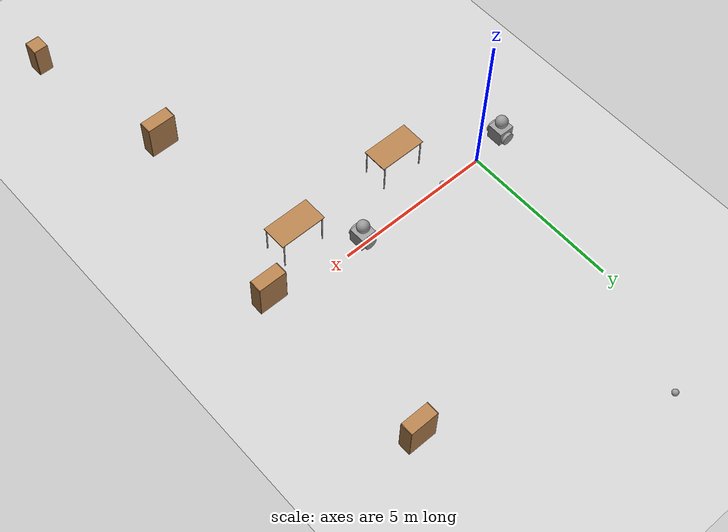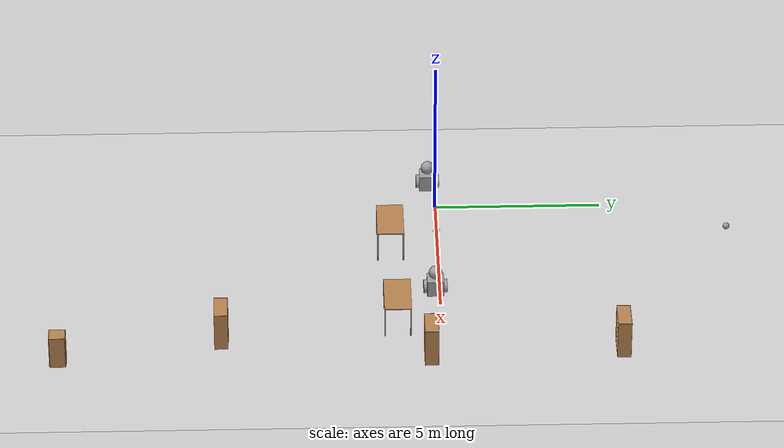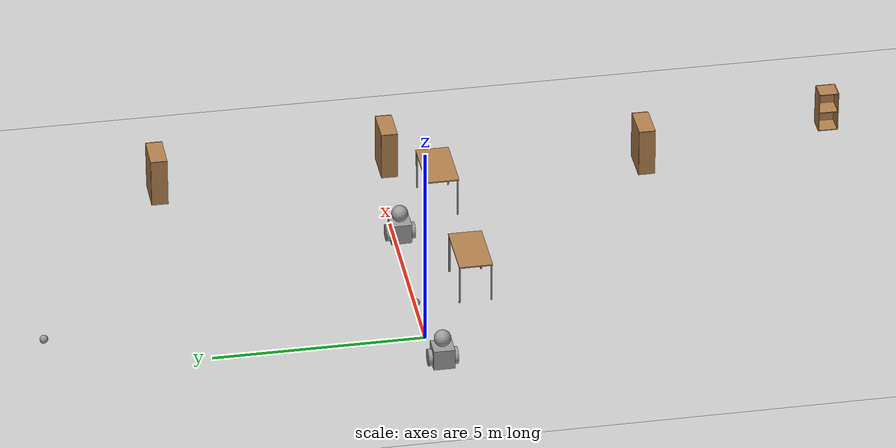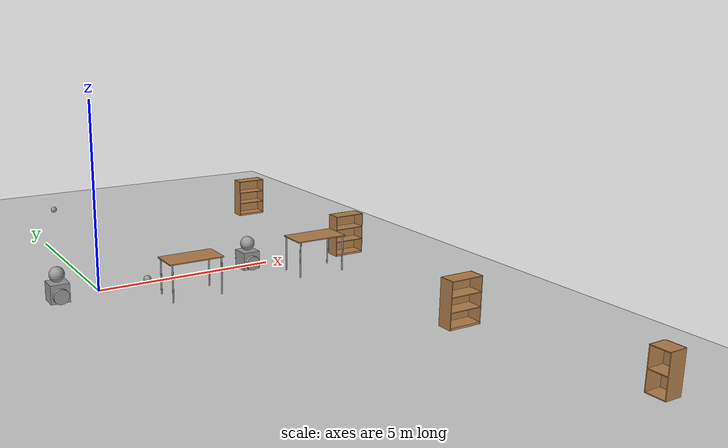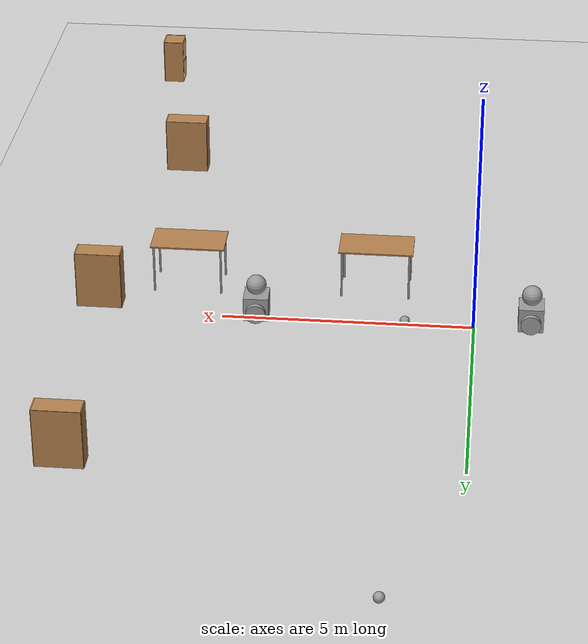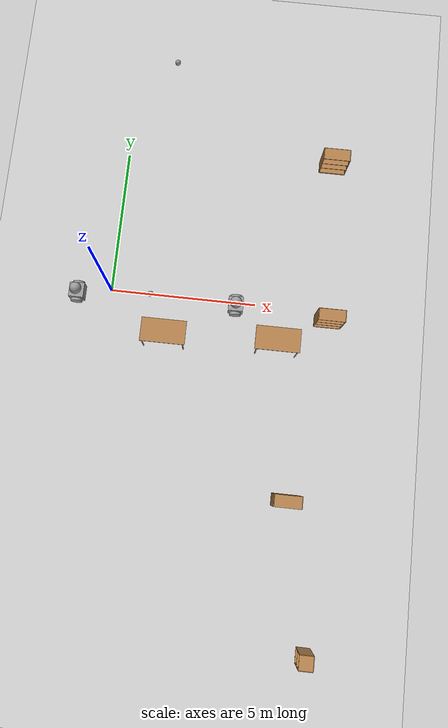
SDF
<sdf version="1.6">
 <world name="default">
  <model name="ground_plane">
   <static>1</static>
   <link name="link">
    <collision name="collision">
     <geometry><plane><normal>0 0 1</normal><size>100 100</size></plane></geometry>
     <surface>
      <contact><collide_bitmask>65535</collide_bitmask></contact>
      <friction><ode><mu>100</mu><mu2>50</mu2></ode></friction>
     </surface>
    </collision>
    <visual name="visual">
     <cast_shadows>0</cast_shadows>
     <geometry><plane><normal>0 0 1</normal><size>100 100</size></plane></geometry>
     <material>
      <script><uri>file://media/materials/scripts/gazebo.material</uri><name>Gazebo/Grey</name></script>
     </material>
    </visual>
   </link>
  </model>
  <model name="HumanoidRobot">
   <link name="link">
    <pose>0 -0 0.25 0 -0 0</pose>
    <inertial>
     <mass>1</mass>
     <inertia>
      <ixx>0.166667</ixx>
      <ixy>0</ixy>
      <ixz>0</ixz>
      <iyy>0.166667</iyy>
      <iyz>0</iyz>
      <izz>0.166667</izz>
     </inertia>
    </inertial>
    <visual name="visual">
     <geometry><box><size>0.5 0.5 0.5</size></box></geometry>
     <material>
      <script><name>Gazebo/Grey</name><uri>file://media/materials/scripts/gazebo.material</uri></script>
      <shader type="pixel"><normal_map>__default__</normal_map></shader>
      <ambient>0.3 0.3 0.3 1</ambient>
      <diffuse>0.7 0.7 0.7 1</diffuse>
      <specular>0.01 0.01 0.01 1</specular>
      <emissive>0 0 0 1</emissive>
     </material>
    </visual>
    <collision name="collision">
     <geometry><box><size>0.5 0.5 0.5</size></box></geometry>
     <surface>
      <friction>
       <ode><mu>1</mu><mu2>1</mu2><fdir1>0 0 0</fdir1><slip1>0</slip1><slip2>0</slip2></ode>
       <torsional>
        <coefficient>1</coefficient>
        <patch_radius>0</patch_radius>
        <surface_radius>0</surface_radius>
        <use_patch_radius>1</use_patch_radius>
        <ode><slip>0</slip></ode>
       </torsional>
      </friction>
      <bounce><restitution_coefficient>0</restitution_coefficient><threshold>1e+06</threshold></bounce>
      <contact>
       <collide_without_contact>0</collide_without_contact>
       <collide_without_contact_bitmask>1</collide_without_contact_bitmask>
       <collide_bitmask>1</collide_bitmask>
       <ode>
        <soft_cfm>0</soft_cfm>
        <soft_erp>0.2</soft_erp>
        <kp>1e+13</kp>
        <kd>1</kd>
        <max_vel>0.01</max_vel>
        <min_depth>0</min_depth>
       </ode>
       <bullet>
        <split_impulse>1</split_impulse>
        <split_impulse_penetration_threshold>-0.01</split_impulse_penetration_threshold>
        <soft_cfm>0</soft_cfm>
        <soft_erp>0.2</soft_erp>
        <kp>1e+13</kp>
        <kd>1</kd>
       </bullet>
      </contact>
     </surface>
    </collision>
   </link>
   <link name="link_0">
    <pose>0 -0 0.7 0 -0 0</pose>
    <inertial>
     <mass>1</mass>
     <inertia><ixx>0.1</ixx><ixy>0</ixy><ixz>0</ixz><iyy>0.1</iyy><iyz>0</iyz><izz>0.1</izz></inertia>
    </inertial>
    <visual name="visual">
     <geometry><sphere><radius>0.2</radius></sphere></geometry>
     <material>
      <lighting>1</lighting>
      <script><uri>file://media/materials/scripts/gazebo.material</uri><name>Gazebo/Grey</name></script>
      <shader type="pixel"><normal_map>__default__</normal_map></shader>
      <ambient>0.3 0.3 0.3 1</ambient>
      <diffuse>0.7 0.7 0.7 1</diffuse>
      <specular>0.01 0.01 0.01 1</specular>
      <emissive>0 0 0 1</emissive>
     </material>
    </visual>
    <collision name="collision">
     <geometry><sphere><radius>0.2</radius></sphere></geometry>
     <surface>
      <friction>
       <ode><mu>1</mu><mu2>1</mu2><fdir1>0 0 0</fdir1><slip1>0</slip1><slip2>0</slip2></ode>
       <torsional>
        <coefficient>1</coefficient>
        <patch_radius>0</patch_radius>
        <surface_radius>0</surface_radius>
        <use_patch_radius>1</use_patch_radius>
        <ode><slip>0</slip></ode>
       </torsional>
      </friction>
      <bounce><restitution_coefficient>0</restitution_coefficient><threshold>1e+06</threshold></bounce>
      <contact>
       <collide_without_contact>0</collide_without_contact>
       <collide_without_contact_bitmask>1</collide_without_contact_bitmask>
       <collide_bitmask>1</collide_bitmask>
       <ode>
        <soft_cfm>0</soft_cfm>
        <soft_erp>0.2</soft_erp>
        <kp>1e+13</kp>
        <kd>1</kd>
        <max_vel>0.01</max_vel>
        <min_depth>0</min_depth>
       </ode>
       <bullet>
        <split_impulse>1</split_impulse>
        <split_impulse_penetration_threshold>-0.01</split_impulse_penetration_threshold>
        <soft_cfm>0</soft_cfm>
        <soft_erp>0.2</soft_erp>
        <kp>1e+13</kp>
        <kd>1</kd>
       </bullet>
      </contact>
     </surface>
    </collision>
   </link>
   <link name="link_1">
    <pose>0 -0.300019 0.2 1.5707 -0 0</pose>
    <inertial>
     <mass>1</mass>
     <inertia><ixx>0.145833</ixx><ixy>0</ixy><ixz>0</ixz><iyy>0.145833</iyy><iyz>0</iyz><izz>0.125</izz></inertia>
    </inertial>
    <visual name="visual">
     <geometry><cylinder><radius>0.2</radius><length>0.1</length></cylinder></geometry>
     <material>
      <lighting>1</lighting>
      <script><uri>file://media/materials/scripts/gazebo.material</uri><name>Gazebo/Grey</name></script>
      <shader type="pixel"><normal_map>__default__</normal_map></shader>
      <ambient>0.3 0.3 0.3 1</ambient>
      <diffuse>0.7 0.7 0.7 1</diffuse>
      <specular>0.01 0.01 0.01 1</specular>
      <emissive>0 0 0 1</emissive>
     </material>
    </visual>
    <collision name="collision">
     <geometry><cylinder><radius>0.2</radius><length>0.1</length></cylinder></geometry>
     <surface>
      <friction>
       <ode><mu>1</mu><mu2>1</mu2><fdir1>0 0 0</fdir1><slip1>0</slip1><slip2>0</slip2></ode>
       <torsional>
        <coefficient>1</coefficient>
        <patch_radius>0</patch_radius>
        <surface_radius>0</surface_radius>
        <use_patch_radius>1</use_patch_radius>
        <ode><slip>0</slip></ode>
       </torsional>
      </friction>
      <bounce><restitution_coefficient>0</restitution_coefficient><threshold>1e+06</threshold></bounce>
      <contact>
       <collide_without_contact>0</collide_without_contact>
       <collide_without_contact_bitmask>1</collide_without_contact_bitmask>
       <collide_bitmask>1</collide_bitmask>
       <ode>
        <soft_cfm>0</soft_cfm>
        <soft_erp>0.2</soft_erp>
        <kp>1e+13</kp>
        <kd>1</kd>
        <max_vel>0.01</max_vel>
        <min_depth>0</min_depth>
       </ode>
       <bullet>
        <split_impulse>1</split_impulse>
        <split_impulse_penetration_threshold>-0.01</split_impulse_penetration_threshold>
        <soft_cfm>0</soft_cfm>
        <soft_erp>0.2</soft_erp>
        <kp>1e+13</kp>
        <kd>1</kd>
       </bullet>
      </contact>
     </surface>
    </collision>
   </link>
   <link name="link_1_clone">
    <pose>0 0.300019 0.2 1.5707 -0 0</pose>
    <inertial>
     <mass>1</mass>
     <inertia><ixx>0.145833</ixx><ixy>0</ixy><ixz>0</ixz><iyy>0.145833</iyy><iyz>0</iyz><izz>0.125</izz></inertia>
    </inertial>
    <visual name="visual">
     <geometry><cylinder><radius>0.2</radius><length>0.1</length></cylinder></geometry>
     <material>
      <lighting>1</lighting>
      <script><uri>file://media/materials/scripts/gazebo.material</uri><name>Gazebo/Grey</name></script>
      <shader type="pixel"><normal_map>__default__</normal_map></shader>
      <ambient>0.3 0.3 0.3 1</ambient>
      <diffuse>0.7 0.7 0.7 1</diffuse>
      <specular>0.01 0.01 0.01 1</specular>
      <emissive>0 0 0 1</emissive>
     </material>
    </visual>
    <collision name="collision">
     <geometry><cylinder><radius>0.2</radius><length>0.1</length></cylinder></geometry>
     <surface>
      <friction>
       <ode><mu>1</mu><mu2>1</mu2><fdir1>0 0 0</fdir1><slip1>0</slip1><slip2>0</slip2></ode>
       <torsional>
        <coefficient>1</coefficient>
        <patch_radius>0</patch_radius>
        <surface_radius>0</surface_radius>
        <use_patch_radius>1</use_patch_radius>
        <ode><slip>0</slip></ode>
       </torsional>
      </friction>
      <bounce><restitution_coefficient>0</restitution_coefficient><threshold>1e+06</threshold></bounce>
      <contact>
       <collide_without_contact>0</collide_without_contact>
       <collide_without_contact_bitmask>1</collide_without_contact_bitmask>
       <collide_bitmask>1</collide_bitmask>
       <ode>
        <soft_cfm>0</soft_cfm>
        <soft_erp>0.2</soft_erp>
        <kp>1e+13</kp>
        <kd>1</kd>
        <max_vel>0.01</max_vel>
        <min_depth>0</min_depth>
       </ode>
       <bullet>
        <split_impulse>1</split_impulse>
        <split_impulse_penetration_threshold>-0.01</split_impulse_penetration_threshold>
        <soft_cfm>0</soft_cfm>
        <soft_erp>0.2</soft_erp>
        <kp>1e+13</kp>
        <kd>1</kd>
       </bullet>
      </contact>
     </surface>
    </collision>
   </link>
   <joint name="link_0_JOINT_2" type="fixed">
    <parent>link_0</parent>
    <child>link</child>
    <physics>
     <ode><limit><cfm>0</cfm><erp>0.2</erp></limit><suspension><cfm>0</cfm><erp>0.2</erp></suspension></ode>
    </physics>
   </joint>
   <joint name="link_JOINT_0" type="revolute">
    <parent>link</parent>
    <child>link_1</child>
    <axis>
     <xyz>0 0 1</xyz>
     <use_parent_model_frame>0</use_parent_model_frame>
     <limit>
      <lower>-1.79769e+308</lower>
      <upper>1.79769e+308</upper>
      <effort>-1</effort>
      <velocity>-1</velocity>
     </limit>
     <dynamics>
      <spring_reference>0</spring_reference>
      <spring_stiffness>0</spring_stiffness>
      <damping>0</damping>
     </dynamics>
    </axis>
    <physics>
     <ode><limit><cfm>0</cfm><erp>0.2</erp></limit><suspension><cfm>0</cfm><erp>0.2</erp></suspension></ode>
    </physics>
   </joint>
   <joint name="link_JOINT_1" type="revolute">
    <parent>link</parent>
    <child>link_1_clone</child>
    <axis>
     <xyz>0 0 1</xyz>
     <use_parent_model_frame>0</use_parent_model_frame>
     <limit>
      <lower>-1.79769e+308</lower>
      <upper>1.79769e+308</upper>
      <effort>-1</effort>
      <velocity>-1</velocity>
     </limit>
     <dynamics>
      <spring_reference>0</spring_reference>
      <spring_stiffness>0</spring_stiffness>
      <damping>0</damping>
     </dynamics>
    </axis>
    <physics>
     <ode><limit><cfm>0</cfm><erp>0.2</erp></limit><suspension><cfm>0</cfm><erp>0.2</erp></suspension></ode>
    </physics>
   </joint>
   <static>0</static>
   <pose>-1.12711 -0.202007 -2e-06 -3e-06 -2e-06 -0.003463</pose>
  </model>
  <model name="cabinet">
   <static>1</static>
   <link name="cabinet_bottom_plate">
    <inertial>
     <pose>0 0 -1 0 -0 0</pose>
     <inertia><ixx>2.05</ixx><ixy>0</ixy><ixz>0</ixz><iyy>2.05</iyy><iyz>0</iyz><izz>2.05</izz></inertia>
     <mass>25</mass>
    </inertial>
    <collision name="cabinet_bottom_plate_geom">
     <pose>0 0 0.01 0 -0 0</pose>
     <geometry><box><size>0.45 0.45 0.02</size></box></geometry>
    </collision>
    <visual name="cabinet_bottom_plate_geom_visual">
     <pose>0 0 0.01 0 -0 0</pose>
     <geometry><box><size>0.45 0.45 0.02</size></box></geometry>
     <material>
      <script><uri>file://media/materials/scripts/gazebo.material</uri><name>Gazebo/Wood</name></script>
     </material>
    </visual>
    <collision name="cabinet_bottom_plate_geom_cabinet_back_plate">
     <pose>0.235 0 0.51 0 -0 0</pose>
     <geometry><box><size>0.02 0.45 1.02</size></box></geometry>
    </collision>
    <visual name="cabinet_bottom_plate_geom_cabinet_back_plate_visual">
     <pose>0.235 0 0.51 0 -0 0</pose>
     <geometry><box><size>0.02 0.45 1.02</size></box></geometry>
     <material>
      <script><uri>file://media/materials/scripts/gazebo.material</uri><name>Gazebo/Wood</name></script>
     </material>
    </visual>
    <collision name="cabinet_bottom_plate_geom_cabinet_left_plate">
     <pose>0 0.235 0.51 0 -0 0</pose>
     <geometry><box><size>0.45 0.02 1.02</size></box></geometry>
    </collision>
    <visual name="cabinet_bottom_plate_geom_cabinet_left_plate_visual">
     <pose>0 0.235 0.51 0 -0 0</pose>
     <geometry><box><size>0.45 0.02 1.02</size></box></geometry>
     <material>
      <script><uri>file://media/materials/scripts/gazebo.material</uri><name>Gazebo/Wood</name></script>
     </material>
    </visual>
    <collision name="cabinet_bottom_plate_geom_cabinet_middle_plate">
     <pose>0 0 0.51 0 -0 0</pose>
     <geometry><box><size>0.45 0.45 0.02</size></box></geometry>
    </collision>
    <visual name="cabinet_bottom_plate_geom_cabinet_middle_plate_visual">
     <pose>0 0 0.51 0 -0 0</pose>
     <geometry><box><size>0.45 0.45 0.02</size></box></geometry>
     <material>
      <script><uri>file://media/materials/scripts/gazebo.material</uri><name>Gazebo/Wood</name></script>
     </material>
    </visual>
    <collision name="cabinet_bottom_plate_geom_cabinet_right_plate">
     <pose>0 -0.235 0.51 0 -0 0</pose>
     <geometry><box><size>0.45 0.02 1.02</size></box></geometry>
    </collision>
    <visual name="cabinet_bottom_plate_geom_cabinet_right_plate_visual">
     <pose>0 -0.235 0.51 0 -0 0</pose>
     <geometry><box><size>0.45 0.02 1.02</size></box></geometry>
     <material>
      <script><uri>file://media/materials/scripts/gazebo.material</uri><name>Gazebo/Wood</name></script>
     </material>
    </visual>
    <collision name="cabinet_bottom_plate_geom_cabinet_top_plate">
     <pose>0 0 1.01 0 -0 0</pose>
     <geometry><box><size>0.45 0.45 0.02</size></box></geometry>
    </collision>
    <visual name="cabinet_bottom_plate_geom_cabinet_top_plate_visual">
     <pose>0 0 1.01 0 -0 0</pose>
     <geometry><box><size>0.45 0.45 0.02</size></box></geometry>
     <material>
      <script><uri>file://media/materials/scripts/gazebo.material</uri><name>Gazebo/Wood</name></script>
     </material>
    </visual>
   </link>
   <pose>7.56401 -11.2347 0 0 -0 0</pose>
  </model>
  <model name="bookshelf">
   <static>1</static>
   <link name="link">
    <inertial><mass>1</mass></inertial>
    <collision name="back">
     <pose>0 0.005 0.6 0 -0 0</pose>
     <geometry><box><size>0.9 0.01 1.2</size></box></geometry>
    </collision>
    <visual name="visual1">
     <pose>0 0.005 0.6 0 -0 0</pose>
     <geometry><box><size>0.9 0.01 1.2</size></box></geometry>
     <material>
      <script><uri>file://media/materials/scripts/gazebo.material</uri><name>Gazebo/Wood</name></script>
     </material>
    </visual>
    <collision name="left_side">
     <pose>0.45 -0.195 0.6 0 -0 0</pose>
     <geometry><box><size>0.02 0.4 1.2</size></box></geometry>
    </collision>
    <visual name="visual2">
     <pose>0.45 -0.195 0.6 0 -0 0</pose>
     <geometry><box><size>0.02 0.4 1.2</size></box></geometry>
     <material>
      <script><uri>file://media/materials/scripts/gazebo.material</uri><name>Gazebo/Wood</name></script>
     </material>
    </visual>
    <collision name="right_side">
     <pose>-0.45 -0.195 0.6 0 -0 0</pose>
     <geometry><box><size>0.02 0.4 1.2</size></box></geometry>
    </collision>
    <visual name="visual3">
     <pose>-0.45 -0.195 0.6 0 -0 0</pose>
     <geometry><box><size>0.02 0.4 1.2</size></box></geometry>
     <material>
      <script><uri>file://media/materials/scripts/gazebo.material</uri><name>Gazebo/Wood</name></script>
     </material>
    </visual>
    <collision name="bottom">
     <pose>0 -0.195 0.03 0 -0 0</pose>
     <geometry><box><size>0.88 0.4 0.06</size></box></geometry>
    </collision>
    <visual name="visual4">
     <pose>0 -0.195 0.03 0 -0 0</pose>
     <geometry><box><size>0.88 0.4 0.06</size></box></geometry>
     <material>
      <script><uri>file://media/materials/scripts/gazebo.material</uri><name>Gazebo/Wood</name></script>
     </material>
    </visual>
    <collision name="top">
     <pose>0 -0.195 1.19 0 -0 0</pose>
     <geometry><box><size>0.88 0.4 0.02</size></box></geometry>
    </collision>
    <visual name="visual5">
     <pose>0 -0.195 1.19 0 -0 0</pose>
     <geometry><box><size>0.88 0.4 0.02</size></box></geometry>
     <material>
      <script><uri>file://media/materials/scripts/gazebo.material</uri><name>Gazebo/Wood</name></script>
     </material>
    </visual>
    <collision name="low_shelf">
     <pose>0 -0.195 0.43 0 -0 0</pose>
     <geometry><box><size>0.88 0.4 0.02</size></box></geometry>
    </collision>
    <visual name="visual6">
     <pose>0 -0.195 0.43 0 -0 0</pose>
     <geometry><box><size>0.88 0.4 0.02</size></box></geometry>
     <material>
      <script><uri>file://media/materials/scripts/gazebo.material</uri><name>Gazebo/Wood</name></script>
     </material>
    </visual>
    <collision name="high_shelf">
     <pose>0 -0.195 0.8 0 -0 0</pose>
     <geometry><box><size>0.88 0.4 0.02</size></box></geometry>
    </collision>
    <visual name="visual7">
     <pose>0 -0.195 0.8 0 -0 0</pose>
     <geometry><box><size>0.88 0.4 0.02</size></box></geometry>
     <material>
      <script><uri>file://media/materials/scripts/gazebo.material</uri><name>Gazebo/Wood</name></script>
     </material>
    </visual>
   </link>
   <pose>7.52219 -0.150432 0 0 -0 0</pose>
  </model>
  <model name="bookshelf_3">
   <static>1</static>
   <link name="link">
    <inertial><mass>1</mass></inertial>
    <collision name="back">
     <pose>0 0.005 0.6 0 -0 0</pose>
     <geometry><box><size>0.9 0.01 1.2</size></box></geometry>
    </collision>
    <visual name="visual1">
     <pose>0 0.005 0.6 0 -0 0</pose>
     <geometry><box><size>0.9 0.01 1.2</size></box></geometry>
     <material>
      <script><uri>file://media/materials/scripts/gazebo.material</uri><name>Gazebo/Wood</name></script>
     </material>
    </visual>
    <collision name="left_side">
     <pose>0.45 -0.195 0.6 0 -0 0</pose>
     <geometry><box><size>0.02 0.4 1.2</size></box></geometry>
    </collision>
    <visual name="visual2">
     <pose>0.45 -0.195 0.6 0 -0 0</pose>
     <geometry><box><size>0.02 0.4 1.2</size></box></geometry>
     <material>
      <script><uri>file://media/materials/scripts/gazebo.material</uri><name>Gazebo/Wood</name></script>
     </material>
    </visual>
    <collision name="right_side">
     <pose>-0.45 -0.195 0.6 0 -0 0</pose>
     <geometry><box><size>0.02 0.4 1.2</size></box></geometry>
    </collision>
    <visual name="visual3">
     <pose>-0.45 -0.195 0.6 0 -0 0</pose>
     <geometry><box><size>0.02 0.4 1.2</size></box></geometry>
     <material>
      <script><uri>file://media/materials/scripts/gazebo.material</uri><name>Gazebo/Wood</name></script>
     </material>
    </visual>
    <collision name="bottom">
     <pose>0 -0.195 0.03 0 -0 0</pose>
     <geometry><box><size>0.88 0.4 0.06</size></box></geometry>
    </collision>
    <visual name="visual4">
     <pose>0 -0.195 0.03 0 -0 0</pose>
     <geometry><box><size>0.88 0.4 0.06</size></box></geometry>
     <material>
      <script><uri>file://media/materials/scripts/gazebo.material</uri><name>Gazebo/Wood</name></script>
     </material>
    </visual>
    <collision name="top">
     <pose>0 -0.195 1.19 0 -0 0</pose>
     <geometry><box><size>0.88 0.4 0.02</size></box></geometry>
    </collision>
    <visual name="visual5">
     <pose>0 -0.195 1.19 0 -0 0</pose>
     <geometry><box><size>0.88 0.4 0.02</size></box></geometry>
     <material>
      <script><uri>file://media/materials/scripts/gazebo.material</uri><name>Gazebo/Wood</name></script>
     </material>
    </visual>
    <collision name="low_shelf">
     <pose>0 -0.195 0.43 0 -0 0</pose>
     <geometry><box><size>0.88 0.4 0.02</size></box></geometry>
    </collision>
    <visual name="visual6">
     <pose>0 -0.195 0.43 0 -0 0</pose>
     <geometry><box><size>0.88 0.4 0.02</size></box></geometry>
     <material>
      <script><uri>file://media/materials/scripts/gazebo.material</uri><name>Gazebo/Wood</name></script>
     </material>
    </visual>
    <collision name="high_shelf">
     <pose>0 -0.195 0.8 0 -0 0</pose>
     <geometry><box><size>0.88 0.4 0.02</size></box></geometry>
    </collision>
    <visual name="visual7">
     <pose>0 -0.195 0.8 0 -0 0</pose>
     <geometry><box><size>0.88 0.4 0.02</size></box></geometry>
     <material>
      <script><uri>file://media/materials/scripts/gazebo.material</uri><name>Gazebo/Wood</name></script>
     </material>
    </visual>
   </link>
   <pose>6.58884 -6.28465 0 0 -0 0</pose>
  </model>
  <model name="bookshelf_4">
   <static>1</static>
   <link name="link">
    <inertial><mass>1</mass></inertial>
    <collision name="back">
     <pose>0 0.005 0.6 0 -0 0</pose>
     <geometry><box><size>0.9 0.01 1.2</size></box></geometry>
    </collision>
    <visual name="visual1">
     <pose>0 0.005 0.6 0 -0 0</pose>
     <geometry><box><size>0.9 0.01 1.2</size></box></geometry>
     <material>
      <script><uri>file://media/materials/scripts/gazebo.material</uri><name>Gazebo/Wood</name></script>
     </material>
    </visual>
    <collision name="left_side">
     <pose>0.45 -0.195 0.6 0 -0 0</pose>
     <geometry><box><size>0.02 0.4 1.2</size></box></geometry>
    </collision>
    <visual name="visual2">
     <pose>0.45 -0.195 0.6 0 -0 0</pose>
     <geometry><box><size>0.02 0.4 1.2</size></box></geometry>
     <material>
      <script><uri>file://media/materials/scripts/gazebo.material</uri><name>Gazebo/Wood</name></script>
     </material>
    </visual>
    <collision name="right_side">
     <pose>-0.45 -0.195 0.6 0 -0 0</pose>
     <geometry><box><size>0.02 0.4 1.2</size></box></geometry>
    </collision>
    <visual name="visual3">
     <pose>-0.45 -0.195 0.6 0 -0 0</pose>
     <geometry><box><size>0.02 0.4 1.2</size></box></geometry>
     <material>
      <script><uri>file://media/materials/scripts/gazebo.material</uri><name>Gazebo/Wood</name></script>
     </material>
    </visual>
    <collision name="bottom">
     <pose>0 -0.195 0.03 0 -0 0</pose>
     <geometry><box><size>0.88 0.4 0.06</size></box></geometry>
    </collision>
    <visual name="visual4">
     <pose>0 -0.195 0.03 0 -0 0</pose>
     <geometry><box><size>0.88 0.4 0.06</size></box></geometry>
     <material>
      <script><uri>file://media/materials/scripts/gazebo.material</uri><name>Gazebo/Wood</name></script>
     </material>
    </visual>
    <collision name="top">
     <pose>0 -0.195 1.19 0 -0 0</pose>
     <geometry><box><size>0.88 0.4 0.02</size></box></geometry>
    </collision>
    <visual name="visual5">
     <pose>0 -0.195 1.19 0 -0 0</pose>
     <geometry><box><size>0.88 0.4 0.02</size></box></geometry>
     <material>
      <script><uri>file://media/materials/scripts/gazebo.material</uri><name>Gazebo/Wood</name></script>
     </material>
    </visual>
    <collision name="low_shelf">
     <pose>0 -0.195 0.43 0 -0 0</pose>
     <geometry><box><size>0.88 0.4 0.02</size></box></geometry>
    </collision>
    <visual name="visual6">
     <pose>0 -0.195 0.43 0 -0 0</pose>
     <geometry><box><size>0.88 0.4 0.02</size></box></geometry>
     <material>
      <script><uri>file://media/materials/scripts/gazebo.material</uri><name>Gazebo/Wood</name></script>
     </material>
    </visual>
    <collision name="high_shelf">
     <pose>0 -0.195 0.8 0 -0 0</pose>
     <geometry><box><size>0.88 0.4 0.02</size></box></geometry>
    </collision>
    <visual name="visual7">
     <pose>0 -0.195 0.8 0 -0 0</pose>
     <geometry><box><size>0.88 0.4 0.02</size></box></geometry>
     <material>
      <script><uri>file://media/materials/scripts/gazebo.material</uri><name>Gazebo/Wood</name></script>
     </material>
    </visual>
   </link>
   <pose>7.26719 5.47498 0 0 -0 0</pose>
  </model>
  <model name="table">
   <static>1</static>
   <link name="link">
    <collision name="surface">
     <pose>0 0 1 0 -0 0</pose>
     <geometry><box><size>1.5 0.8 0.03</size></box></geometry>
     <surface><friction><ode><mu>0.6</mu><mu2>0.6</mu2></ode></friction></surface>
    </collision>
    <visual name="visual1">
     <pose>0 0 1 0 -0 0</pose>
     <geometry><box><size>1.5 0.8 0.03</size></box></geometry>
     <material>
      <script><uri>file://media/materials/scripts/gazebo.material</uri><name>Gazebo/Wood</name></script>
     </material>
    </visual>
    <collision name="front_left_leg">
     <pose>0.68 0.38 0.5 0 -0 0</pose>
     <geometry><cylinder><radius>0.02</radius><length>1</length></cylinder></geometry>
    </collision>
    <visual name="front_left_leg">
     <pose>0.68 0.38 0.5 0 -0 0</pose>
     <geometry><cylinder><radius>0.02</radius><length>1</length></cylinder></geometry>
     <material>
      <script><uri>file://media/materials/scripts/gazebo.material</uri><name>Gazebo/Grey</name></script>
     </material>
    </visual>
    <collision name="front_right_leg">
     <pose>0.68 -0.38 0.5 0 -0 0</pose>
     <geometry><cylinder><radius>0.02</radius><length>1</length></cylinder></geometry>
    </collision>
    <visual name="front_right_leg">
     <pose>0.68 -0.38 0.5 0 -0 0</pose>
     <geometry><cylinder><radius>0.02</radius><length>1</length></cylinder></geometry>
     <material>
      <script><uri>file://media/materials/scripts/gazebo.material</uri><name>Gazebo/Grey</name></script>
     </material>
    </visual>
    <collision name="back_right_leg">
     <pose>-0.68 -0.38 0.5 0 -0 0</pose>
     <geometry><cylinder><radius>0.02</radius><length>1</length></cylinder></geometry>
    </collision>
    <visual name="back_right_leg">
     <pose>-0.68 -0.38 0.5 0 -0 0</pose>
     <geometry><cylinder><radius>0.02</radius><length>1</length></cylinder></geometry>
     <material>
      <script><uri>file://media/materials/scripts/gazebo.material</uri><name>Gazebo/Grey</name></script>
     </material>
    </visual>
    <collision name="back_left_leg">
     <pose>-0.68 0.38 0.5 0 -0 0</pose>
     <geometry><cylinder><radius>0.02</radius><length>1</length></cylinder></geometry>
    </collision>
    <visual name="back_left_leg">
     <pose>-0.68 0.38 0.5 0 -0 0</pose>
     <geometry><cylinder><radius>0.02</radius><length>1</length></cylinder></geometry>
     <material>
      <script><uri>file://media/materials/scripts/gazebo.material</uri><name>Gazebo/Grey</name></script>
     </material>
    </visual>
   </link>
   <pose>5.82663 -1.29323 0 0 -0 0</pose>
  </model>
  <model name="table_0">
   <static>1</static>
   <link name="link">
    <collision name="surface">
     <pose>0 0 1 0 -0 0</pose>
     <geometry><box><size>1.5 0.8 0.03</size></box></geometry>
     <surface><friction><ode><mu>0.6</mu><mu2>0.6</mu2></ode></friction></surface>
    </collision>
    <visual name="visual1">
     <pose>0 0 1 0 -0 0</pose>
     <geometry><box><size>1.5 0.8 0.03</size></box></geometry>
     <material>
      <script><uri>file://media/materials/scripts/gazebo.material</uri><name>Gazebo/Wood</name></script>
     </material>
    </visual>
    <collision name="front_left_leg">
     <pose>0.68 0.38 0.5 0 -0 0</pose>
     <geometry><cylinder><radius>0.02</radius><length>1</length></cylinder></geometry>
    </collision>
    <visual name="front_left_leg">
     <pose>0.68 0.38 0.5 0 -0 0</pose>
     <geometry><cylinder><radius>0.02</radius><length>1</length></cylinder></geometry>
     <material>
      <script><uri>file://media/materials/scripts/gazebo.material</uri><name>Gazebo/Grey</name></script>
     </material>
    </visual>
    <collision name="front_right_leg">
     <pose>0.68 -0.38 0.5 0 -0 0</pose>
     <geometry><cylinder><radius>0.02</radius><length>1</length></cylinder></geometry>
    </collision>
    <visual name="front_right_leg">
     <pose>0.68 -0.38 0.5 0 -0 0</pose>
     <geometry><cylinder><radius>0.02</radius><length>1</length></cylinder></geometry>
     <material>
      <script><uri>file://media/materials/scripts/gazebo.material</uri><name>Gazebo/Grey</name></script>
     </material>
    </visual>
    <collision name="back_right_leg">
     <pose>-0.68 -0.38 0.5 0 -0 0</pose>
     <geometry><cylinder><radius>0.02</radius><length>1</length></cylinder></geometry>
    </collision>
    <visual name="back_right_leg">
     <pose>-0.68 -0.38 0.5 0 -0 0</pose>
     <geometry><cylinder><radius>0.02</radius><length>1</length></cylinder></geometry>
     <material>
      <script><uri>file://media/materials/scripts/gazebo.material</uri><name>Gazebo/Grey</name></script>
     </material>
    </visual>
    <collision name="back_left_leg">
     <pose>-0.68 0.38 0.5 0 -0 0</pose>
     <geometry><cylinder><radius>0.02</radius><length>1</length></cylinder></geometry>
    </collision>
    <visual name="back_left_leg">
     <pose>-0.68 0.38 0.5 0 -0 0</pose>
     <geometry><cylinder><radius>0.02</radius><length>1</length></cylinder></geometry>
     <material>
      <script><uri>file://media/materials/scripts/gazebo.material</uri><name>Gazebo/Grey</name></script>
     </material>
    </visual>
   </link>
   <pose>2.01937 -1.41898 0 0 -0 0</pose>
  </model>
  <model name="HumanoidRobot_clone">
   <link name="link">
    <pose>0 -0 0.25 0 -0 0</pose>
    <inertial>
     <mass>1</mass>
     <inertia>
      <ixx>0.166667</ixx>
      <ixy>0</ixy>
      <ixz>0</ixz>
      <iyy>0.166667</iyy>
      <iyz>0</iyz>
      <izz>0.166667</izz>
     </inertia>
    </inertial>
    <visual name="visual">
     <geometry><box><size>0.5 0.5 0.5</size></box></geometry>
     <material>
      <script><name>Gazebo/Grey</name><uri>file://media/materials/scripts/gazebo.material</uri></script>
      <shader type="pixel"><normal_map>__default__</normal_map></shader>
      <ambient>0.3 0.3 0.3 1</ambient>
      <diffuse>0.7 0.7 0.7 1</diffuse>
      <specular>0.01 0.01 0.01 1</specular>
      <emissive>0 0 0 1</emissive>
     </material>
    </visual>
    <collision name="collision">
     <geometry><box><size>0.5 0.5 0.5</size></box></geometry>
     <surface>
      <friction>
       <ode><mu>1</mu><mu2>1</mu2><fdir1>0 0 0</fdir1><slip1>0</slip1><slip2>0</slip2></ode>
       <torsional>
        <coefficient>1</coefficient>
        <patch_radius>0</patch_radius>
        <surface_radius>0</surface_radius>
        <use_patch_radius>1</use_patch_radius>
        <ode><slip>0</slip></ode>
       </torsional>
      </friction>
      <bounce><restitution_coefficient>0</restitution_coefficient><threshold>1e+06</threshold></bounce>
      <contact>
       <collide_without_contact>0</collide_without_contact>
       <collide_without_contact_bitmask>1</collide_without_contact_bitmask>
       <collide_bitmask>1</collide_bitmask>
       <ode>
        <soft_cfm>0</soft_cfm>
        <soft_erp>0.2</soft_erp>
        <kp>1e+13</kp>
        <kd>1</kd>
        <max_vel>0.01</max_vel>
        <min_depth>0</min_depth>
       </ode>
       <bullet>
        <split_impulse>1</split_impulse>
        <split_impulse_penetration_threshold>-0.01</split_impulse_penetration_threshold>
        <soft_cfm>0</soft_cfm>
        <soft_erp>0.2</soft_erp>
        <kp>1e+13</kp>
        <kd>1</kd>
       </bullet>
      </contact>
     </surface>
    </collision>
   </link>
   <link name="link_0">
    <pose>0 -0 0.7 0 -0 0</pose>
    <inertial>
     <mass>1</mass>
     <inertia><ixx>0.1</ixx><ixy>0</ixy><ixz>0</ixz><iyy>0.1</iyy><iyz>0</iyz><izz>0.1</izz></inertia>
    </inertial>
    <visual name="visual">
     <geometry><sphere><radius>0.2</radius></sphere></geometry>
     <material>
      <lighting>1</lighting>
      <script><uri>file://media/materials/scripts/gazebo.material</uri><name>Gazebo/Grey</name></script>
      <shader type="pixel"><normal_map>__default__</normal_map></shader>
      <ambient>0.3 0.3 0.3 1</ambient>
      <diffuse>0.7 0.7 0.7 1</diffuse>
      <specular>0.01 0.01 0.01 1</specular>
      <emissive>0 0 0 1</emissive>
     </material>
    </visual>
    <collision name="collision">
     <geometry><sphere><radius>0.2</radius></sphere></geometry>
     <surface>
      <friction>
       <ode><mu>1</mu><mu2>1</mu2><fdir1>0 0 0</fdir1><slip1>0</slip1><slip2>0</slip2></ode>
       <torsional>
        <coefficient>1</coefficient>
        <patch_radius>0</patch_radius>
        <surface_radius>0</surface_radius>
        <use_patch_radius>1</use_patch_radius>
        <ode><slip>0</slip></ode>
       </torsional>
      </friction>
      <bounce><restitution_coefficient>0</restitution_coefficient><threshold>1e+06</threshold></bounce>
      <contact>
       <collide_without_contact>0</collide_without_contact>
       <collide_without_contact_bitmask>1</collide_without_contact_bitmask>
       <collide_bitmask>1</collide_bitmask>
       <ode>
        <soft_cfm>0</soft_cfm>
        <soft_erp>0.2</soft_erp>
        <kp>1e+13</kp>
        <kd>1</kd>
        <max_vel>0.01</max_vel>
        <min_depth>0</min_depth>
       </ode>
       <bullet>
        <split_impulse>1</split_impulse>
        <split_impulse_penetration_threshold>-0.01</split_impulse_penetration_threshold>
        <soft_cfm>0</soft_cfm>
        <soft_erp>0.2</soft_erp>
        <kp>1e+13</kp>
        <kd>1</kd>
       </bullet>
      </contact>
     </surface>
    </collision>
   </link>
   <link name="link_1">
    <pose>0 -0.300019 0.2 1.5707 -0 0</pose>
    <inertial>
     <mass>1</mass>
     <inertia><ixx>0.145833</ixx><ixy>0</ixy><ixz>0</ixz><iyy>0.145833</iyy><iyz>0</iyz><izz>0.125</izz></inertia>
    </inertial>
    <visual name="visual">
     <geometry><cylinder><radius>0.2</radius><length>0.1</length></cylinder></geometry>
     <material>
      <lighting>1</lighting>
      <script><uri>file://media/materials/scripts/gazebo.material</uri><name>Gazebo/Grey</name></script>
      <shader type="pixel"><normal_map>__default__</normal_map></shader>
      <ambient>0.3 0.3 0.3 1</ambient>
      <diffuse>0.7 0.7 0.7 1</diffuse>
      <specular>0.01 0.01 0.01 1</specular>
      <emissive>0 0 0 1</emissive>
     </material>
    </visual>
    <collision name="collision">
     <geometry><cylinder><radius>0.2</radius><length>0.1</length></cylinder></geometry>
     <surface>
      <friction>
       <ode><mu>1</mu><mu2>1</mu2><fdir1>0 0 0</fdir1><slip1>0</slip1><slip2>0</slip2></ode>
       <torsional>
        <coefficient>1</coefficient>
        <patch_radius>0</patch_radius>
        <surface_radius>0</surface_radius>
        <use_patch_radius>1</use_patch_radius>
        <ode><slip>0</slip></ode>
       </torsional>
      </friction>
      <bounce><restitution_coefficient>0</restitution_coefficient><threshold>1e+06</threshold></bounce>
      <contact>
       <collide_without_contact>0</collide_without_contact>
       <collide_without_contact_bitmask>1</collide_without_contact_bitmask>
       <collide_bitmask>1</collide_bitmask>
       <ode>
        <soft_cfm>0</soft_cfm>
        <soft_erp>0.2</soft_erp>
        <kp>1e+13</kp>
        <kd>1</kd>
        <max_vel>0.01</max_vel>
        <min_depth>0</min_depth>
       </ode>
       <bullet>
        <split_impulse>1</split_impulse>
        <split_impulse_penetration_threshold>-0.01</split_impulse_penetration_threshold>
        <soft_cfm>0</soft_cfm>
        <soft_erp>0.2</soft_erp>
        <kp>1e+13</kp>
        <kd>1</kd>
       </bullet>
      </contact>
     </surface>
    </collision>
   </link>
   <link name="link_1_clone">
    <pose>0 0.300019 0.2 1.5707 -0 0</pose>
    <inertial>
     <mass>1</mass>
     <inertia><ixx>0.145833</ixx><ixy>0</ixy><ixz>0</ixz><iyy>0.145833</iyy><iyz>0</iyz><izz>0.125</izz></inertia>
    </inertial>
    <visual name="visual">
     <geometry><cylinder><radius>0.2</radius><length>0.1</length></cylinder></geometry>
     <material>
      <lighting>1</lighting>
      <script><uri>file://media/materials/scripts/gazebo.material</uri><name>Gazebo/Grey</name></script>
      <shader type="pixel"><normal_map>__default__</normal_map></shader>
      <ambient>0.3 0.3 0.3 1</ambient>
      <diffuse>0.7 0.7 0.7 1</diffuse>
      <specular>0.01 0.01 0.01 1</specular>
      <emissive>0 0 0 1</emissive>
     </material>
    </visual>
    <collision name="collision">
     <geometry><cylinder><radius>0.2</radius><length>0.1</length></cylinder></geometry>
     <surface>
      <friction>
       <ode><mu>1</mu><mu2>1</mu2><fdir1>0 0 0</fdir1><slip1>0</slip1><slip2>0</slip2></ode>
       <torsional>
        <coefficient>1</coefficient>
        <patch_radius>0</patch_radius>
        <surface_radius>0</surface_radius>
        <use_patch_radius>1</use_patch_radius>
        <ode><slip>0</slip></ode>
       </torsional>
      </friction>
      <bounce><restitution_coefficient>0</restitution_coefficient><threshold>1e+06</threshold></bounce>
      <contact>
       <collide_without_contact>0</collide_without_contact>
       <collide_without_contact_bitmask>1</collide_without_contact_bitmask>
       <collide_bitmask>1</collide_bitmask>
       <ode>
        <soft_cfm>0</soft_cfm>
        <soft_erp>0.2</soft_erp>
        <kp>1e+13</kp>
        <kd>1</kd>
        <max_vel>0.01</max_vel>
        <min_depth>0</min_depth>
       </ode>
       <bullet>
        <split_impulse>1</split_impulse>
        <split_impulse_penetration_threshold>-0.01</split_impulse_penetration_threshold>
        <soft_cfm>0</soft_cfm>
        <soft_erp>0.2</soft_erp>
        <kp>1e+13</kp>
        <kd>1</kd>
       </bullet>
      </contact>
     </surface>
    </collision>
   </link>
   <joint name="link_0_JOINT_2" type="fixed">
    <parent>link_0</parent>
    <child>link</child>
    <physics>
     <ode><limit><cfm>0</cfm><erp>0.2</erp></limit><suspension><cfm>0</cfm><erp>0.2</erp></suspension></ode>
    </physics>
   </joint>
   <joint name="link_JOINT_0" type="revolute">
    <parent>link</parent>
    <child>link_1</child>
    <axis>
     <xyz>0 0 1</xyz>
     <use_parent_model_frame>0</use_parent_model_frame>
     <limit>
      <lower>-1.79769e+308</lower>
      <upper>1.79769e+308</upper>
      <effort>-1</effort>
      <velocity>-1</velocity>
     </limit>
     <dynamics>
      <spring_reference>0</spring_reference>
      <spring_stiffness>0</spring_stiffness>
      <damping>0</damping>
     </dynamics>
    </axis>
    <physics>
     <ode><limit><cfm>0</cfm><erp>0.2</erp></limit><suspension><cfm>0</cfm><erp>0.2</erp></suspension></ode>
    </physics>
   </joint>
   <joint name="link_JOINT_1" type="revolute">
    <parent>link</parent>
    <child>link_1_clone</child>
    <axis>
     <xyz>0 0 1</xyz>
     <use_parent_model_frame>0</use_parent_model_frame>
     <limit>
      <lower>-1.79769e+308</lower>
      <upper>1.79769e+308</upper>
      <effort>-1</effort>
      <velocity>-1</velocity>
     </limit>
     <dynamics>
      <spring_reference>0</spring_reference>
      <spring_stiffness>0</spring_stiffness>
      <damping>0</damping>
     </dynamics>
    </axis>
    <physics>
     <ode><limit><cfm>0</cfm><erp>0.2</erp></limit><suspension><cfm>0</cfm><erp>0.2</erp></suspension></ode>
    </physics>
   </joint>
   <static>0</static>
   <pose>4.33032 -0.129119 5e-06 -0 -1e-05 0.025518</pose>
  </model>
  <model name="my_ball_0">
   <link name="link">
    <inertial>
     <mass>1</mass>
     <inertia><ixx>0.1</ixx><ixy>0</ixy><ixz>0</ixz><iyy>0.1</iyy><iyz>0</iyz><izz>0.1</izz></inertia>
    </inertial>
    <visual name="visual">
     <geometry><sphere><radius>0.1</radius></sphere></geometry>
     <material>
      <script><name>Gazebo/Grey</name><uri>file://media/materials/scripts/gazebo.material</uri></script>
      <ambient>1 1 1 1</ambient>
      <diffuse>1 1 1 1</diffuse>
      <specular>1 1 1 1</specular>
      <emissive>1 1 1 1</emissive>
      <shader type="vertex"><normal_map>__default__</normal_map></shader>
     </material>
    </visual>
    <collision name="collision">
     <geometry><sphere><radius>0.1</radius></sphere></geometry>
     <surface>
      <friction>
       <ode><mu>1</mu><mu2>1</mu2><fdir1>0 0 0</fdir1><slip1>0</slip1><slip2>0</slip2></ode>
       <torsional>
        <coefficient>1</coefficient>
        <patch_radius>0</patch_radius>
        <surface_radius>0</surface_radius>
        <use_patch_radius>1</use_patch_radius>
        <ode><slip>0</slip></ode>
       </torsional>
      </friction>
      <bounce><restitution_coefficient>0</restitution_coefficient><threshold>1e+06</threshold></bounce>
      <contact>
       <collide_without_contact>0</collide_without_contact>
       <collide_without_contact_bitmask>1</collide_without_contact_bitmask>
       <collide_bitmask>1</collide_bitmask>
       <ode>
        <soft_cfm>0</soft_cfm>
        <soft_erp>0.2</soft_erp>
        <kp>1e+13</kp>
        <kd>1</kd>
        <max_vel>0.01</max_vel>
        <min_depth>0</min_depth>
       </ode>
       <bullet>
        <split_impulse>1</split_impulse>
        <split_impulse_penetration_threshold>-0.01</split_impulse_penetration_threshold>
        <soft_cfm>0</soft_cfm>
        <soft_erp>0.2</soft_erp>
        <kp>1e+13</kp>
        <kd>1</kd>
       </bullet>
      </contact>
     </surface>
    </collision>
   </link>
   <static>0</static>
   <pose>1.33069 8.76547 0.1 0 -0 0</pose>
  </model>
  <model name="my_ball_1">
   <link name="link">
    <inertial>
     <mass>1</mass>
     <inertia><ixx>0.1</ixx><ixy>0</ixy><ixz>0</ixz><iyy>0.1</iyy><iyz>0</iyz><izz>0.1</izz></inertia>
    </inertial>
    <visual name="visual">
     <geometry><sphere><radius>0.1</radius></sphere></geometry>
     <material>
      <script><name>Gazebo/Grey</name><uri>file://media/materials/scripts/gazebo.material</uri></script>
      <ambient>1 1 1 1</ambient>
      <diffuse>1 1 1 1</diffuse>
      <specular>1 1 1 1</specular>
      <emissive>1 1 1 1</emissive>
      <shader type="vertex"><normal_map>__default__</normal_map></shader>
     </material>
    </visual>
    <collision name="collision">
     <geometry><sphere><radius>0.1</radius></sphere></geometry>
     <surface>
      <friction>
       <ode><mu>1</mu><mu2>1</mu2><fdir1>0 0 0</fdir1><slip1>0</slip1><slip2>0</slip2></ode>
       <torsional>
        <coefficient>1</coefficient>
        <patch_radius>0</patch_radius>
        <surface_radius>0</surface_radius>
        <use_patch_radius>1</use_patch_radius>
        <ode><slip>0</slip></ode>
       </torsional>
      </friction>
      <bounce><restitution_coefficient>0</restitution_coefficient><threshold>1e+06</threshold></bounce>
      <contact>
       <collide_without_contact>0</collide_without_contact>
       <collide_without_contact_bitmask>1</collide_without_contact_bitmask>
       <collide_bitmask>1</collide_bitmask>
       <ode>
        <soft_cfm>0</soft_cfm>
        <soft_erp>0.2</soft_erp>
        <kp>1e+13</kp>
        <kd>1</kd>
        <max_vel>0.01</max_vel>
        <min_depth>0</min_depth>
       </ode>
       <bullet>
        <split_impulse>1</split_impulse>
        <split_impulse_penetration_threshold>-0.01</split_impulse_penetration_threshold>
        <soft_cfm>0</soft_cfm>
        <soft_erp>0.2</soft_erp>
        <kp>1e+13</kp>
        <kd>1</kd>
       </bullet>
      </contact>
     </surface>
    </collision>
   </link>
   <static>0</static>
   <pose>1.36163 0.00079 0.1 0 -0 0</pose>
  </model>
 </world>
</sdf>
